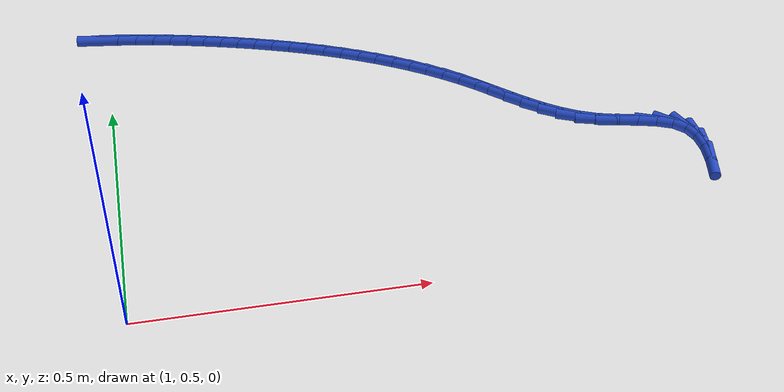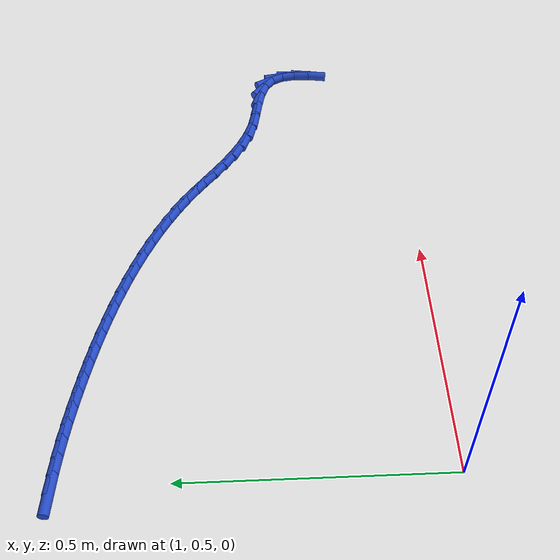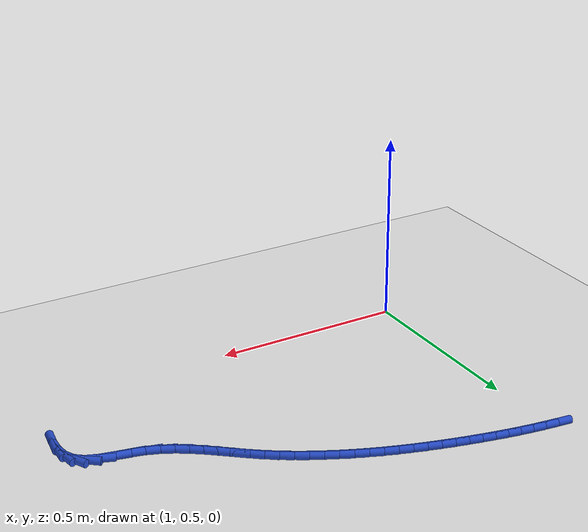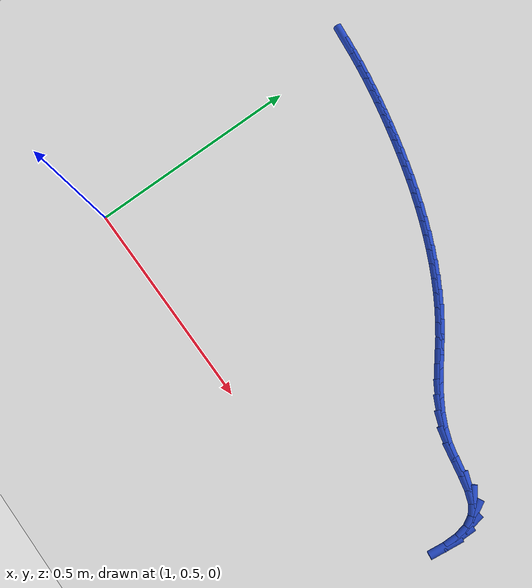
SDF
<sdf version="1.6">
 <world name="default">
  <model name="ground_plane">
   <static>1</static>
   <link name="link">
    <collision name="collision">
     <geometry><plane><normal>0 0 1</normal><size>100 100</size></plane></geometry>
     <surface><friction><ode><mu>100</mu><mu2>50</mu2></ode></friction></surface>
    </collision>
    <visual name="visual">
     <cast_shadows>0</cast_shadows>
     <geometry><plane><normal>0 0 1</normal><size>100 100</size></plane></geometry>
     <material>
      <script><uri>file://media/materials/scripts/gazebo.material</uri><name>Gazebo/WhiteGlow</name></script>
     </material>
    </visual>
   </link>
  </model>
  <model name="line">
   <link name="link_53">
    <pose>0.9840502277232878 1.2034010747830337 0.01 0 1.57 -0.12918347361894353</pose>
    <collision name="collision">
     <geometry><cylinder><radius>0.01</radius><length>0.08</length></cylinder></geometry>
    </collision>
    <visual name="visual">
     <material>
      <script><name>Gazebo/Blue</name><uri>file://media/materials/scripts/gazebo.material</uri></script>
     </material>
     <geometry><cylinder><radius>0.01</radius><length>0.08</length></cylinder></geometry>
    </visual>
   </link>
   <link name="link_54">
    <pose>1.0206646947996745 1.1986446019980588 0.01 0 1.57 -0.1512373208761898</pose>
    <collision name="collision">
     <geometry><cylinder><radius>0.01</radius><length>0.08</length></cylinder></geometry>
    </collision>
    <visual name="visual">
     <material>
      <script><name>Gazebo/Blue</name><uri>file://media/materials/scripts/gazebo.material</uri></script>
     </material>
     <geometry><cylinder><radius>0.01</radius><length>0.08</length></cylinder></geometry>
    </visual>
   </link>
   <link name="link_55">
    <pose>1.0553173925527566 1.193363494856494 0.01 0 1.57 -0.17313168465110418</pose>
    <collision name="collision">
     <geometry><cylinder><radius>0.01</radius><length>0.08</length></cylinder></geometry>
    </collision>
    <visual name="visual">
     <material>
      <script><name>Gazebo/Blue</name><uri>file://media/materials/scripts/gazebo.material</uri></script>
     </material>
     <geometry><cylinder><radius>0.01</radius><length>0.08</length></cylinder></geometry>
    </visual>
   </link>
   <link name="link_56">
    <pose>1.0884519486182331 1.187568839866349 0.01 0 1.57 -0.19411385612958476</pose>
    <collision name="collision">
     <geometry><cylinder><radius>0.01</radius><length>0.08</length></cylinder></geometry>
    </collision>
    <visual name="visual">
     <material>
      <script><name>Gazebo/Blue</name><uri>file://media/materials/scripts/gazebo.material</uri></script>
     </material>
     <geometry><cylinder><radius>0.01</radius><length>0.08</length></cylinder></geometry>
    </visual>
   </link>
   <link name="link_57">
    <pose>1.120553673395602 1.1812579857242653 0.01 0 1.57 -0.2131555409797598</pose>
    <collision name="collision">
     <geometry><cylinder><radius>0.01</radius><length>0.08</length></cylinder></geometry>
    </collision>
    <visual name="visual">
     <material>
      <script><name>Gazebo/Blue</name><uri>file://media/materials/scripts/gazebo.material</uri></script>
     </material>
     <geometry><cylinder><radius>0.01</radius><length>0.08</length></cylinder></geometry>
    </visual>
   </link>
   <link name="link_58">
    <pose>1.1521078772843614 1.1744282811268842 0.01 0 1.57 -0.2293304754180516</pose>
    <collision name="collision">
     <geometry><cylinder><radius>0.01</radius><length>0.08</length></cylinder></geometry>
    </collision>
    <visual name="visual">
     <material>
      <script><name>Gazebo/Blue</name><uri>file://media/materials/scripts/gazebo.material</uri></script>
     </material>
     <geometry><cylinder><radius>0.01</radius><length>0.08</length></cylinder></geometry>
    </visual>
   </link>
   <link name="link_59">
    <pose>1.1835991958256602 1.1670770345501822 0.01 0 1.57 -0.24337684750250377</pose>
    <collision name="collision">
     <geometry><cylinder><radius>0.01</radius><length>0.08</length></cylinder></geometry>
    </collision>
    <visual name="visual">
     <material>
      <script><name>Gazebo/Blue</name><uri>file://media/materials/scripts/gazebo.material</uri></script>
     </material>
     <geometry><cylinder><radius>0.01</radius><length>0.08</length></cylinder></geometry>
    </visual>
   </link>
   <link name="link_60">
    <pose>1.2153547607505166 1.1591921674510592 0.01 0 1.57 -0.2583178332389964</pose>
    <collision name="collision">
     <geometry><cylinder><radius>0.01</radius><length>0.08</length></cylinder></geometry>
    </collision>
    <visual name="visual">
     <material>
      <script><name>Gazebo/Blue</name><uri>file://media/materials/scripts/gazebo.material</uri></script>
     </material>
     <geometry><cylinder><radius>0.01</radius><length>0.08</length></cylinder></geometry>
    </visual>
   </link>
   <link name="link_61">
    <pose>1.2473429243875163 1.1507402185078575 0.01 0 1.57 -0.27463583548799975</pose>
    <collision name="collision">
     <geometry><cylinder><radius>0.01</radius><length>0.08</length></cylinder></geometry>
    </collision>
    <visual name="visual">
     <material>
      <script><name>Gazebo/Blue</name><uri>file://media/materials/scripts/gazebo.material</uri></script>
     </material>
     <geometry><cylinder><radius>0.01</radius><length>0.08</length></cylinder></geometry>
    </visual>
   </link>
   <link name="link_62">
    <pose>1.2794823311002603 1.1416847638698542 0.01 0 1.57 -0.292384979813822</pose>
    <collision name="collision">
     <geometry><cylinder><radius>0.01</radius><length>0.08</length></cylinder></geometry>
    </collision>
    <visual name="visual">
     <material>
      <script><name>Gazebo/Blue</name><uri>file://media/materials/scripts/gazebo.material</uri></script>
     </material>
     <geometry><cylinder><radius>0.01</radius><length>0.08</length></cylinder></geometry>
    </visual>
   </link>
   <link name="link_63">
    <pose>1.3116916252523507 1.1319893796863252 0.01 0 1.57 -0.31162972916830767</pose>
    <collision name="collision">
     <geometry><cylinder><radius>0.01</radius><length>0.08</length></cylinder></geometry>
    </collision>
    <visual name="visual">
     <material>
      <script><name>Gazebo/Blue</name><uri>file://media/materials/scripts/gazebo.material</uri></script>
     </material>
     <geometry><cylinder><radius>0.01</radius><length>0.08</length></cylinder></geometry>
    </visual>
   </link>
   <link name="link_64">
    <pose>1.3438894512073882 1.1216176421065471 0.01 0 1.57 -0.33244425735694993</pose>
    <collision name="collision">
     <geometry><cylinder><radius>0.01</radius><length>0.08</length></cylinder></geometry>
    </collision>
    <visual name="visual">
     <material>
      <script><name>Gazebo/Blue</name><uri>file://media/materials/scripts/gazebo.material</uri></script>
     </material>
     <geometry><cylinder><radius>0.01</radius><length>0.08</length></cylinder></geometry>
    </visual>
   </link>
   <link name="link_65">
    <pose>1.3759944533289756 1.1105331272797967 0.01 0 1.57 -0.35491178128516054</pose>
    <collision name="collision">
     <geometry><cylinder><radius>0.01</radius><length>0.08</length></cylinder></geometry>
    </collision>
    <visual name="visual">
     <material>
      <script><name>Gazebo/Blue</name><uri>file://media/materials/scripts/gazebo.material</uri></script>
     </material>
     <geometry><cylinder><radius>0.01</radius><length>0.08</length></cylinder></geometry>
    </visual>
   </link>
   <link name="link_66">
    <pose>1.407925275980714 1.0986994113553503 0.01 0 1.57 -0.3791237536900243</pose>
    <collision name="collision">
     <geometry><cylinder><radius>0.01</radius><length>0.08</length></cylinder></geometry>
    </collision>
    <visual name="visual">
     <material>
      <script><name>Gazebo/Blue</name><uri>file://media/materials/scripts/gazebo.material</uri></script>
     </material>
     <geometry><cylinder><radius>0.01</radius><length>0.08</length></cylinder></geometry>
    </visual>
   </link>
   <link name="link_67">
    <pose>1.4396005635262041 1.0860800704824842 0.01 0 1.57 -0.4051788071473947</pose>
    <collision name="collision">
     <geometry><cylinder><radius>0.01</radius><length>0.08</length></cylinder></geometry>
    </collision>
    <visual name="visual">
     <material>
      <script><name>Gazebo/Blue</name><uri>file://media/materials/scripts/gazebo.material</uri></script>
     </material>
     <geometry><cylinder><radius>0.01</radius><length>0.08</length></cylinder></geometry>
    </visual>
   </link>
   <link name="link_68">
    <pose>1.4709389603290495 1.0726386808104753 0.01 0 1.57 -0.43318132545705185</pose>
    <collision name="collision">
     <geometry><cylinder><radius>0.01</radius><length>0.08</length></cylinder></geometry>
    </collision>
    <visual name="visual">
     <material>
      <script><name>Gazebo/Blue</name><uri>file://media/materials/scripts/gazebo.material</uri></script>
     </material>
     <geometry><cylinder><radius>0.01</radius><length>0.08</length></cylinder></geometry>
    </visual>
   </link>
   <link name="link_69">
    <pose>1.5018591107528498 1.0583388184885996 0.01 0 1.57 -0.463239502043332</pose>
    <collision name="collision">
     <geometry><cylinder><radius>0.01</radius><length>0.08</length></cylinder></geometry>
    </collision>
    <visual name="visual">
     <material>
      <script><name>Gazebo/Blue</name><uri>file://media/materials/scripts/gazebo.material</uri></script>
     </material>
     <geometry><cylinder><radius>0.01</radius><length>0.08</length></cylinder></geometry>
    </visual>
   </link>
   <link name="link_70">
    <pose>1.5322796591612082 1.0431440596661337 0.01 0 1.57 -0.495462729909424</pose>
    <collision name="collision">
     <geometry><cylinder><radius>0.01</radius><length>0.08</length></cylinder></geometry>
    </collision>
    <visual name="visual">
     <material>
      <script><name>Gazebo/Blue</name><uri>file://media/materials/scripts/gazebo.material</uri></script>
     </material>
     <geometry><cylinder><radius>0.01</radius><length>0.08</length></cylinder></geometry>
    </visual>
   </link>
   <link name="link_71">
    <pose>1.5621192499177246 1.0270179804923543 0.01 0 1.57 -0.5299581588326245</pose>
    <collision name="collision">
     <geometry><cylinder><radius>0.01</radius><length>0.08</length></cylinder></geometry>
    </collision>
    <visual name="visual">
     <material>
      <script><name>Gazebo/Blue</name><uri>file://media/materials/scripts/gazebo.material</uri></script>
     </material>
     <geometry><cylinder><radius>0.01</radius><length>0.08</length></cylinder></geometry>
    </visual>
   </link>
   <link name="link_72">
    <pose>1.5912965273860027 1.009924157116538 0.01 0 1.57 -0.5668262601040052</pose>
    <collision name="collision">
     <geometry><cylinder><radius>0.01</radius><length>0.08</length></cylinder></geometry>
    </collision>
    <visual name="visual">
     <material>
      <script><name>Gazebo/Blue</name><uri>file://media/materials/scripts/gazebo.material</uri></script>
     </material>
     <geometry><cylinder><radius>0.01</radius><length>0.08</length></cylinder></geometry>
    </visual>
   </link>
   <link name="link_73">
    <pose>1.6197301359296423 0.991826165687961 0.01 0 1.57 -0.6061552670771325</pose>
    <collision name="collision">
     <geometry><cylinder><radius>0.01</radius><length>0.08</length></cylinder></geometry>
    </collision>
    <visual name="visual">
     <material>
      <script><name>Gazebo/Blue</name><uri>file://media/materials/scripts/gazebo.material</uri></script>
     </material>
     <geometry><cylinder><radius>0.01</radius><length>0.08</length></cylinder></geometry>
    </visual>
   </link>
   <link name="link_74">
    <pose>1.6473387199122465 0.9726875823558999 0.01 0 1.57 -0.6476272706307407</pose>
    <collision name="collision">
     <geometry><cylinder><radius>0.01</radius><length>0.08</length></cylinder></geometry>
    </collision>
    <visual name="visual">
     <material>
      <script><name>Gazebo/Blue</name><uri>file://media/materials/scripts/gazebo.material</uri></script>
     </material>
     <geometry><cylinder><radius>0.01</radius><length>0.08</length></cylinder></geometry>
    </visual>
   </link>
   <link name="link_75">
    <pose>1.6740495587627473 0.9524817094675756 0.01 0 1.57 -0.679446377801756</pose>
    <collision name="collision">
     <geometry><cylinder><radius>0.01</radius><length>0.08</length></cylinder></geometry>
    </collision>
    <visual name="visual">
     <material>
      <script><name>Gazebo/Blue</name><uri>file://media/materials/scripts/gazebo.material</uri></script>
     </material>
     <geometry><cylinder><radius>0.01</radius><length>0.08</length></cylinder></geometry>
    </visual>
   </link>
   <link name="link_76">
    <pose>1.7000526750464713 0.9314777929044854 0.01 0 1.57 -0.6878020673779364</pose>
    <collision name="collision">
     <geometry><cylinder><radius>0.01</radius><length>0.08</length></cylinder></geometry>
    </collision>
    <visual name="visual">
     <material>
      <script><name>Gazebo/Blue</name><uri>file://media/materials/scripts/gazebo.material</uri></script>
     </material>
     <geometry><cylinder><radius>0.01</radius><length>0.08</length></cylinder></geometry>
    </visual>
   </link>
   <link name="link_77">
    <pose>1.7258423412759978 0.9102877737215612 0.01 0 1.57 -0.6718137363278206</pose>
    <collision name="collision">
     <geometry><cylinder><radius>0.01</radius><length>0.08</length></cylinder></geometry>
    </collision>
    <visual name="visual">
     <material>
      <script><name>Gazebo/Blue</name><uri>file://media/materials/scripts/gazebo.material</uri></script>
     </material>
     <geometry><cylinder><radius>0.01</radius><length>0.08</length></cylinder></geometry>
    </visual>
   </link>
   <link name="link_78">
    <pose>1.751929822414418 0.889542732601619 0.01 0 1.57 -0.6314138473119161</pose>
    <collision name="collision">
     <geometry><cylinder><radius>0.01</radius><length>0.08</length></cylinder></geometry>
    </collision>
    <visual name="visual">
     <material>
      <script><name>Gazebo/Blue</name><uri>file://media/materials/scripts/gazebo.material</uri></script>
     </material>
     <geometry><cylinder><radius>0.01</radius><length>0.08</length></cylinder></geometry>
    </visual>
   </link>
   <link name="link_79">
    <pose>1.7788263834248215 0.8698737502274755 0.01 0 1.57 -0.5668712234926163</pose>
    <collision name="collision">
     <geometry><cylinder><radius>0.01</radius><length>0.08</length></cylinder></geometry>
    </collision>
    <visual name="visual">
     <material>
      <script><name>Gazebo/Blue</name><uri>file://media/materials/scripts/gazebo.material</uri></script>
     </material>
     <geometry><cylinder><radius>0.01</radius><length>0.08</length></cylinder></geometry>
    </visual>
   </link>
   <link name="link_80">
    <pose>1.8070432892702986 0.8519119072819468 0.01 0 1.57 -0.47947723847241763</pose>
    <collision name="collision">
     <geometry><cylinder><radius>0.01</radius><length>0.08</length></cylinder></geometry>
    </collision>
    <visual name="visual">
     <material>
      <script><name>Gazebo/Blue</name><uri>file://media/materials/scripts/gazebo.material</uri></script>
     </material>
     <geometry><cylinder><radius>0.01</radius><length>0.08</length></cylinder></geometry>
    </visual>
   </link>
   <link name="link_81">
    <pose>1.8370918049139389 0.8362882844478495 0.01 0 1.57 -0.3724368873553625</pose>
    <collision name="collision">
     <geometry><cylinder><radius>0.01</radius><length>0.08</length></cylinder></geometry>
    </collision>
    <visual name="visual">
     <material>
      <script><name>Gazebo/Blue</name><uri>file://media/materials/scripts/gazebo.material</uri></script>
     </material>
     <geometry><cylinder><radius>0.01</radius><length>0.08</length></cylinder></geometry>
    </visual>
   </link>
   <link name="link_82">
    <pose>1.8694831953188336 0.8236339624079998 0.01 0 1.57 -0.2575996870524825</pose>
    <collision name="collision">
     <geometry><cylinder><radius>0.01</radius><length>0.08</length></cylinder></geometry>
    </collision>
    <visual name="visual">
     <material>
      <script><name>Gazebo/Blue</name><uri>file://media/materials/scripts/gazebo.material</uri></script>
     </material>
     <geometry><cylinder><radius>0.01</radius><length>0.08</length></cylinder></geometry>
    </visual>
   </link>
   <link name="link_83">
    <pose>1.9045343344497125 0.8143996346541451 0.01 0 1.57 -0.19963521092587871</pose>
    <collision name="collision">
     <geometry><cylinder><radius>0.01</radius><length>0.08</length></cylinder></geometry>
    </collision>
    <visual name="visual">
     <material>
      <script><name>Gazebo/Blue</name><uri>file://media/materials/scripts/gazebo.material</uri></script>
     </material>
     <geometry><cylinder><radius>0.01</radius><length>0.08</length></cylinder></geometry>
    </visual>
   </link>
   <link name="link_84">
    <pose>1.9405002130008353 0.8071226482030847 0.01 0 1.57 -0.22996582729856602</pose>
    <collision name="collision">
     <geometry><cylinder><radius>0.01</radius><length>0.08</length></cylinder></geometry>
    </collision>
    <visual name="visual">
     <material>
      <script><name>Gazebo/Blue</name><uri>file://media/materials/scripts/gazebo.material</uri></script>
     </material>
     <geometry><cylinder><radius>0.01</radius><length>0.08</length></cylinder></geometry>
    </visual>
   </link>
   <link name="link_85">
    <pose>1.974393893477205 0.799187889620978 0.01 0 1.57 -0.3713942121806908</pose>
    <collision name="collision">
     <geometry><cylinder><radius>0.01</radius><length>0.08</length></cylinder></geometry>
    </collision>
    <visual name="visual">
     <material>
      <script><name>Gazebo/Blue</name><uri>file://media/materials/scripts/gazebo.material</uri></script>
     </material>
     <geometry><cylinder><radius>0.01</radius><length>0.08</length></cylinder></geometry>
    </visual>
   </link>
   <link name="link_86">
    <pose>2.0032113688021447 0.7879644055744135 0.01 0 1.57 -0.6871446987874089</pose>
    <collision name="collision">
     <geometry><cylinder><radius>0.01</radius><length>0.08</length></cylinder></geometry>
    </collision>
    <visual name="visual">
     <material>
      <script><name>Gazebo/Blue</name><uri>file://media/materials/scripts/gazebo.material</uri></script>
     </material>
     <geometry><cylinder><radius>0.01</radius><length>0.08</length></cylinder></geometry>
    </visual>
   </link>
   <link name="link_87">
    <pose>2.0240254324271367 0.77088548595408 0.01 0 1.57 -1.103435647464435</pose>
    <collision name="collision">
     <geometry><cylinder><radius>0.01</radius><length>0.08</length></cylinder></geometry>
    </collision>
    <visual name="visual">
     <material>
      <script><name>Gazebo/Blue</name><uri>file://media/materials/scripts/gazebo.material</uri></script>
     </material>
     <geometry><cylinder><radius>0.01</radius><length>0.08</length></cylinder></geometry>
    </visual>
   </link>
   <link name="link_88">
    <pose>2.0360083007734033 0.7471405765465122 0.01 0 1.57 -1.414148970123349</pose>
    <collision name="collision">
     <geometry><cylinder><radius>0.01</radius><length>0.08</length></cylinder></geometry>
    </collision>
    <visual name="visual">
     <material>
      <script><name>Gazebo/Blue</name><uri>file://media/materials/scripts/gazebo.material</uri></script>
     </material>
     <geometry><cylinder><radius>0.01</radius><length>0.08</length></cylinder></geometry>
    </visual>
   </link>
   <link name="link_89">
    <pose>2.040635193262233 0.7178455726222261 0.01 0 1.57 1.5370235443627425</pose>
    <collision name="collision">
     <geometry><cylinder><radius>0.01</radius><length>0.08</length></cylinder></geometry>
    </collision>
    <visual name="visual">
     <material>
      <script><name>Gazebo/Blue</name><uri>file://media/materials/scripts/gazebo.material</uri></script>
     </material>
     <geometry><cylinder><radius>0.01</radius><length>0.08</length></cylinder></geometry>
    </visual>
   </link>
   <link name="link_90">
    <pose>2.0394989552107075 0.6842147628738251 0.01 0 1.57 1.4274012658003892</pose>
    <collision name="collision">
     <geometry><cylinder><radius>0.01</radius><length>0.08</length></cylinder></geometry>
    </collision>
    <visual name="visual">
     <material>
      <script><name>Gazebo/Blue</name><uri>file://media/materials/scripts/gazebo.material</uri></script>
     </material>
     <geometry><cylinder><radius>0.01</radius><length>0.08</length></cylinder></geometry>
    </visual>
   </link>
  </model>
 </world>
</sdf>
